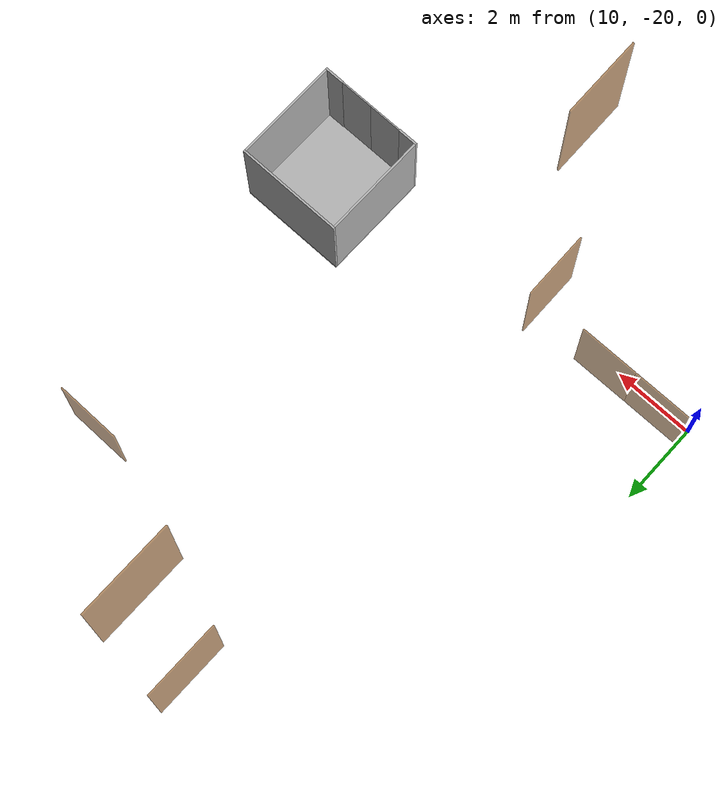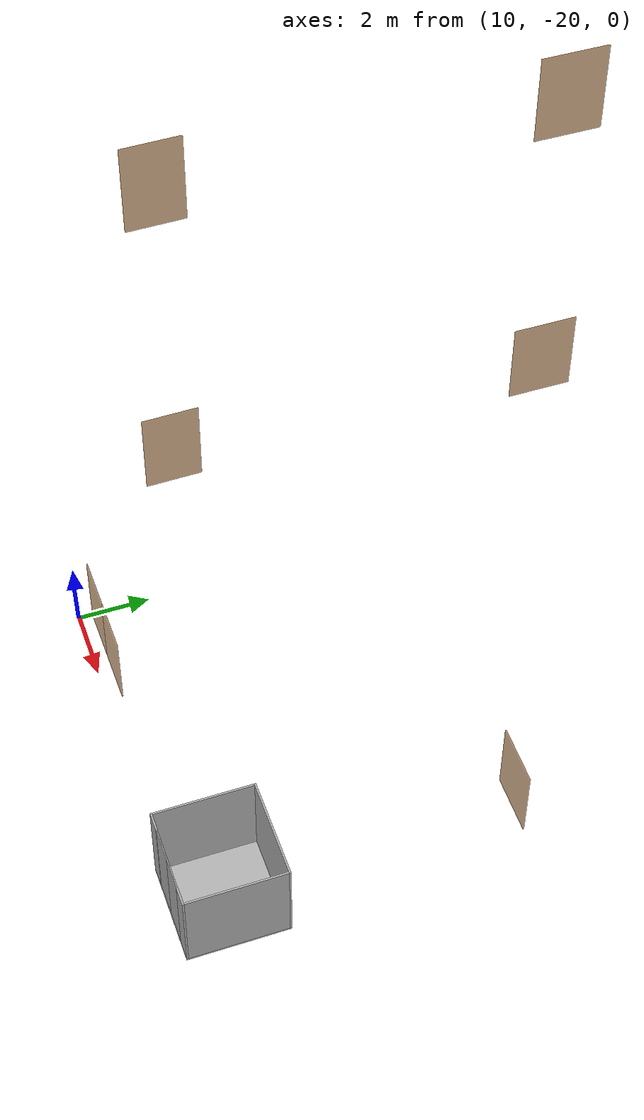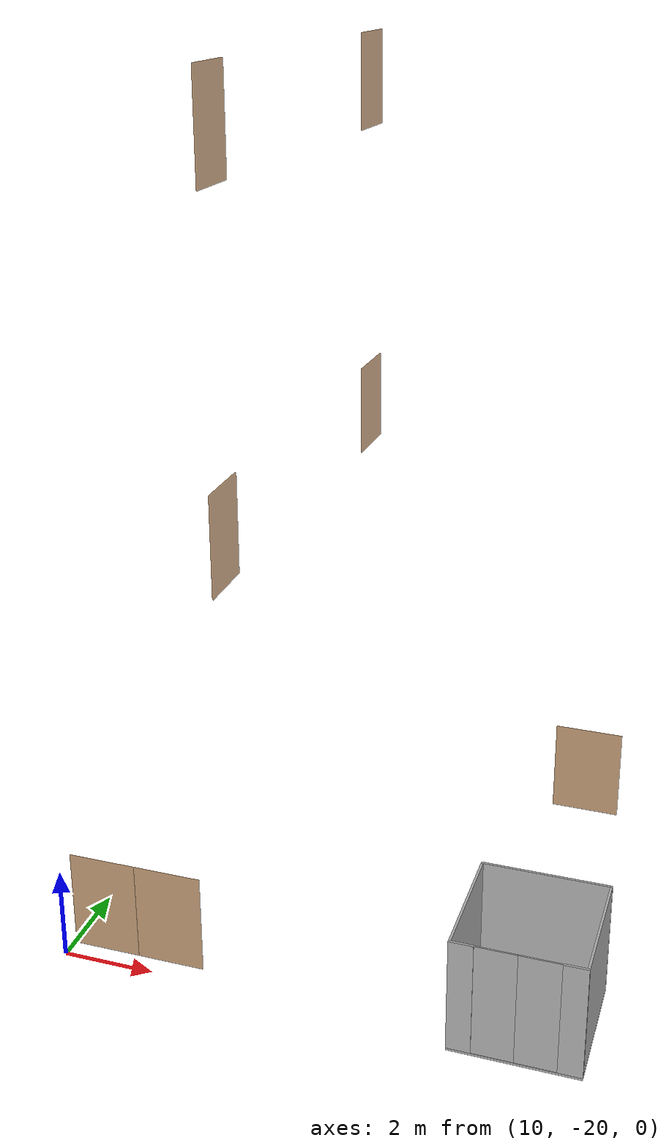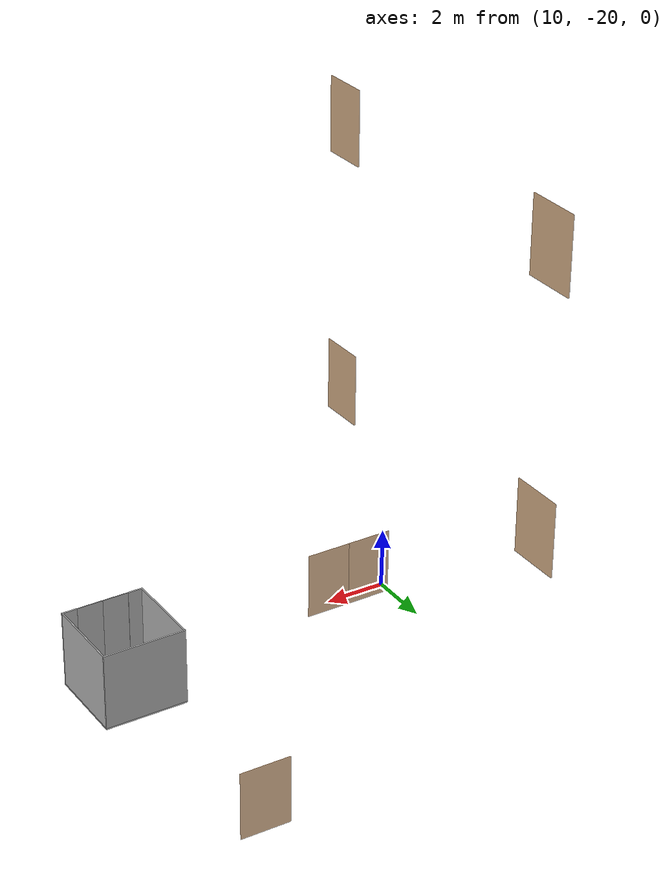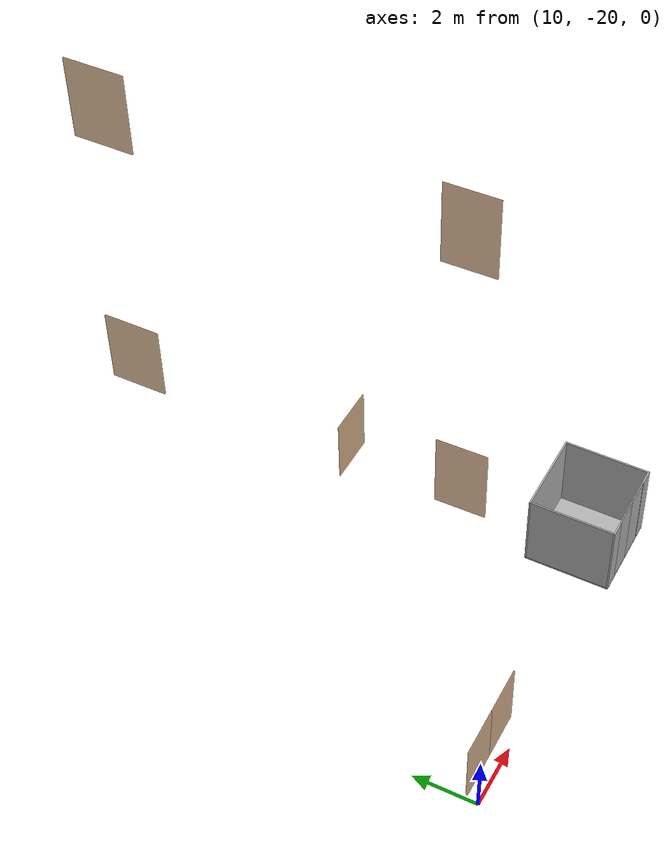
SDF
<sdf version="1.7">
 <world name="sim_world">
  <model name="L1_door2">
   <pose>11.515053553551752 -19.600764056030513 0.0 0 0 -3.1369488994516814</pose>
   <link name="right">
    <pose>0.7374085791900343 0 1.11 0 0 0</pose>
    <visual name="right_visual">
     <geometry><box><size>1.4648171583800687 0.03 2.2</size></box></geometry>
     <material>
      <ambient>0.5 0.25 0 0.6</ambient>
      <diffuse>0.5 0.25 0 0.6</diffuse>
      <pbr><metal><metalness>0.0</metalness></metal></pbr>
     </material>
    </visual>
    <collision name="right_collision">
     <geometry><box><size>1.4648171583800687 0.03 2.2</size></box></geometry>
     <surface><contact><collide_bitmask>0x02</collide_bitmask></contact></surface>
    </collision>
    <inertial>
     <mass>50.0</mass>
     <inertia><ixx>20.17041666666667</ixx><iyy>29.107038781186084</iyy><izz>8.944122114519415</izz></inertia>
    </inertial>
   </link>
   <joint name="right_joint" type="prismatic">
    <parent>world</parent>
    <child>right</child>
    <axis>
     <xyz>1 0 0</xyz>
     <limit><lower>0.0</lower><upper>1.4748171583800687</upper><effort>500.0</effort></limit>
    </axis>
   </joint>
   <link name="left">
    <pose>-0.7374085791900343 0 1.11 0 0 0</pose>
    <visual name="left_visual">
     <geometry><box><size>1.4648171583800687 0.03 2.2</size></box></geometry>
     <material>
      <ambient>0.5 0.25 0 0.6</ambient>
      <diffuse>0.5 0.25 0 0.6</diffuse>
      <pbr><metal><metalness>0.0</metalness></metal></pbr>
     </material>
    </visual>
    <collision name="left_collision">
     <geometry><box><size>1.4648171583800687 0.03 2.2</size></box></geometry>
     <surface><contact><collide_bitmask>0x02</collide_bitmask></contact></surface>
    </collision>
    <inertial>
     <mass>50.0</mass>
     <inertia><ixx>20.17041666666667</ixx><iyy>29.107038781186084</iyy><izz>8.944122114519415</izz></inertia>
    </inertial>
   </link>
   <joint name="left_joint" type="prismatic">
    <parent>world</parent>
    <child>left</child>
    <axis>
     <xyz>1 0 0</xyz>
     <limit><lower>-1.4748171583800687</lower><upper>0.0</upper><effort>500.0</effort></limit>
    </axis>
   </joint>
   <plugin name="register_component" filename="libregister_component.so">
    <component name="Door">
     <v_max_door>0.2</v_max_door>
     <a_max_door>0.2</a_max_door>
     <a_nom_door>0.08</a_nom_door>
     <dx_min_door>0.001</dx_min_door>
     <f_max_door>100.0</f_max_door>
     <ros_interface>true</ros_interface>
     <door name="L1_door2" type="DoubleSlidingDoor" left_joint_name="left_joint" right_joint_name="right_joint"/>
    </component>
   </plugin>
  </model>
  <model name="L1_door4">
   <pose>19.549120677562087 -11.10939551168469 0.0 0 0 -0.009497018345977264</pose>
   <link name="right">
    <pose>0 0 1.11 0 0 0</pose>
    <visual name="right_visual">
     <geometry><box><size>1.5905993122484277 0.03 2.2</size></box></geometry>
     <material>
      <ambient>0.5 0.25 0 0.6</ambient>
      <diffuse>0.5 0.25 0 0.6</diffuse>
      <pbr><metal><metalness>0.0</metalness></metal></pbr>
     </material>
    </visual>
    <collision name="right_collision">
     <geometry><box><size>1.5905993122484277 0.03 2.2</size></box></geometry>
     <surface><contact><collide_bitmask>0x02</collide_bitmask></contact></surface>
    </collision>
    <inertial>
     <mass>50.0</mass>
     <inertia><ixx>20.17041666666667</ixx><iyy>30.70835905052155</iyy><izz>10.545442383854882</izz></inertia>
    </inertial>
   </link>
   <joint name="right_joint" type="revolute">
    <parent>world</parent>
    <child>right</child>
    <axis><xyz>0 0 1</xyz><limit><lower>0</lower><upper>1.57</upper></limit></axis>
    <pose>0.8002996561242138 0 0 0 0 0</pose>
   </joint>
   <plugin name="register_component" filename="libregister_component.so">
    <component name="Door">
     <v_max_door>0.5</v_max_door>
     <a_max_door>0.3</a_max_door>
     <a_nom_door>0.15</a_nom_door>
     <dx_min_door>0.01</dx_min_door>
     <f_max_door>500.0</f_max_door>
     <ros_interface>true</ros_interface>
     <door name="L1_door4" type="SwingDoor" left_joint_name="empty_joint" right_joint_name="right_joint"/>
    </component>
   </plugin>
  </model>
  <model name="L2_door9">
   <pose>13.018848337594756 -17.76158217016259 8.0 0 0 1.5874688733681936</pose>
   <link name="right">
    <pose>0 0 1.11 0 0 0</pose>
    <visual name="right_visual">
     <geometry><box><size>1.382945881897145 0.03 2.2</size></box></geometry>
     <material>
      <ambient>0.5 0.25 0 0.6</ambient>
      <diffuse>0.5 0.25 0 0.6</diffuse>
      <pbr><metal><metalness>0.0</metalness></metal></pbr>
     </material>
    </visual>
    <collision name="right_collision">
     <geometry><box><size>1.382945881897145 0.03 2.2</size></box></geometry>
     <surface><contact><collide_bitmask>0x02</collide_bitmask></contact></surface>
    </collision>
    <inertial>
     <mass>50.0</mass>
     <inertia><ixx>20.17041666666667</ixx><iyy>28.13558046773447</iyy><izz>7.9726638010677995</izz></inertia>
    </inertial>
   </link>
   <joint name="right_joint" type="revolute">
    <parent>world</parent>
    <child>right</child>
    <axis><xyz>0 0 -1</xyz><limit><lower>0</lower><upper>1.57</upper></limit></axis>
    <pose>0.6964729409485725 0 0 0 0 0</pose>
   </joint>
   <plugin name="register_component" filename="libregister_component.so">
    <component name="Door">
     <v_max_door>0.5</v_max_door>
     <a_max_door>0.3</a_max_door>
     <a_nom_door>0.15</a_nom_door>
     <dx_min_door>0.01</dx_min_door>
     <f_max_door>500.0</f_max_door>
     <ros_interface>true</ros_interface>
     <door name="L2_door9" type="SwingDoor" left_joint_name="empty_joint" right_joint_name="right_joint"/>
    </component>
   </plugin>
  </model>
  <model name="L2_door11">
   <pose>13.070832545372092 -8.29507317951618 8.0 0 0 1.571612558028263</pose>
   <link name="right">
    <pose>0 0 1.11 0 0 0</pose>
    <visual name="right_visual">
     <geometry><box><size>1.5950330216253457 0.03 2.2</size></box></geometry>
     <material>
      <ambient>0.5 0.25 0 0.6</ambient>
      <diffuse>0.5 0.25 0 0.6</diffuse>
      <pbr><metal><metalness>0.0</metalness></metal></pbr>
     </material>
    </visual>
    <collision name="right_collision">
     <geometry><box><size>1.5950330216253457 0.03 2.2</size></box></geometry>
     <surface><contact><collide_bitmask>0x02</collide_bitmask></contact></surface>
    </collision>
    <inertial>
     <mass>50.0</mass>
     <inertia><ixx>20.17041666666667</ixx><iyy>30.767209750313672</iyy><izz>10.604293083647002</izz></inertia>
    </inertial>
   </link>
   <joint name="right_joint" type="revolute">
    <parent>world</parent>
    <child>right</child>
    <axis><xyz>0 0 -1</xyz><limit><lower>0</lower><upper>1.57</upper></limit></axis>
    <pose>0.8025165108126728 0 0 0 0 0</pose>
   </joint>
   <plugin name="register_component" filename="libregister_component.so">
    <component name="Door">
     <v_max_door>0.5</v_max_door>
     <a_max_door>0.3</a_max_door>
     <a_nom_door>0.15</a_nom_door>
     <dx_min_door>0.01</dx_min_door>
     <f_max_door>500.0</f_max_door>
     <ros_interface>true</ros_interface>
     <door name="L2_door11" type="SwingDoor" left_joint_name="empty_joint" right_joint_name="right_joint"/>
    </component>
   </plugin>
  </model>
  <model name="L3_door9">
   <pose>13.018848337594756 -17.76158217016259 16.0 0 0 1.5874688733681936</pose>
   <link name="right">
    <pose>0 0 1.11 0 0 0</pose>
    <visual name="right_visual">
     <geometry><box><size>1.382945881897145 0.03 2.2</size></box></geometry>
     <material>
      <ambient>0.5 0.25 0 0.6</ambient>
      <diffuse>0.5 0.25 0 0.6</diffuse>
      <pbr><metal><metalness>0.0</metalness></metal></pbr>
     </material>
    </visual>
    <collision name="right_collision">
     <geometry><box><size>1.382945881897145 0.03 2.2</size></box></geometry>
     <surface><contact><collide_bitmask>0x02</collide_bitmask></contact></surface>
    </collision>
    <inertial>
     <mass>50.0</mass>
     <inertia><ixx>20.17041666666667</ixx><iyy>28.13558046773447</iyy><izz>7.9726638010677995</izz></inertia>
    </inertial>
   </link>
   <joint name="right_joint" type="revolute">
    <parent>world</parent>
    <child>right</child>
    <axis><xyz>0 0 -1</xyz><limit><lower>0</lower><upper>1.57</upper></limit></axis>
    <pose>0.6964729409485725 0 0 0 0 0</pose>
   </joint>
   <plugin name="register_component" filename="libregister_component.so">
    <component name="Door">
     <v_max_door>0.5</v_max_door>
     <a_max_door>0.3</a_max_door>
     <a_nom_door>0.15</a_nom_door>
     <dx_min_door>0.01</dx_min_door>
     <f_max_door>500.0</f_max_door>
     <ros_interface>true</ros_interface>
     <door name="L3_door9" type="SwingDoor" left_joint_name="empty_joint" right_joint_name="right_joint"/>
    </component>
   </plugin>
  </model>
  <model name="L3_door11">
   <pose>13.070832545372092 -8.29507317951618 16.0 0 0 1.571612558028263</pose>
   <link name="right">
    <pose>0 0 1.11 0 0 0</pose>
    <visual name="right_visual">
     <geometry><box><size>1.5950330216253457 0.03 2.2</size></box></geometry>
     <material>
      <ambient>0.5 0.25 0 0.6</ambient>
      <diffuse>0.5 0.25 0 0.6</diffuse>
      <pbr><metal><metalness>0.0</metalness></metal></pbr>
     </material>
    </visual>
    <collision name="right_collision">
     <geometry><box><size>1.5950330216253457 0.03 2.2</size></box></geometry>
     <surface><contact><collide_bitmask>0x02</collide_bitmask></contact></surface>
    </collision>
    <inertial>
     <mass>50.0</mass>
     <inertia><ixx>20.17041666666667</ixx><iyy>30.767209750313672</iyy><izz>10.604293083647002</izz></inertia>
    </inertial>
   </link>
   <joint name="right_joint" type="revolute">
    <parent>world</parent>
    <child>right</child>
    <axis><xyz>0 0 -1</xyz><limit><lower>0</lower><upper>1.57</upper></limit></axis>
    <pose>0.8025165108126728 0 0 0 0 0</pose>
   </joint>
   <plugin name="register_component" filename="libregister_component.so">
    <component name="Door">
     <v_max_door>0.5</v_max_door>
     <a_max_door>0.3</a_max_door>
     <a_nom_door>0.15</a_nom_door>
     <dx_min_door>0.01</dx_min_door>
     <f_max_door>500.0</f_max_door>
     <ros_interface>true</ros_interface>
     <door name="L3_door11" type="SwingDoor" left_joint_name="empty_joint" right_joint_name="right_joint"/>
    </component>
   </plugin>
  </model>
  <model name="Lift1">
   <link name="platform">
    <inertial>
     <mass>1200</mass>
     <inertia><ixx>729.2500000000001</ixx><iyy>729.2500000000001</iyy><izz>1458.0000000000002</izz></inertia>
    </inertial>
    <visual name="floor_visual">
     <pose>0 0 -0.025 0 0 0</pose>
     <geometry><box><size>2.7 2.7 0.05</size></box></geometry>
     <material>
      <ambient>0.5 0.5 0.5 1</ambient>
      <diffuse>0.7 0.7 0.7 1</diffuse>
      <specular>0.6 0.6 0.6 1</specular>
      <emissive>0.1 0.1 0.1 1</emissive>
     </material>
    </visual>
    <collision name="floor_collision">
     <pose>0 0 -0.025 0 0 0</pose>
     <geometry><box><size>2.7 2.7 0.05</size></box></geometry>
     <surface><contact><collide_bitmask>0x01</collide_bitmask></contact></surface>
    </collision>
    <visual name="frontwall1_visual">
     <pose>0.0 1.3250000000000002 1.25 0 0 0</pose>
     <geometry><box><size>2.7 0.05 2.5</size></box></geometry>
     <material>
      <ambient>0.5 0.5 0.5 1</ambient>
      <diffuse>0.7 0.7 0.7 1</diffuse>
      <specular>0.6 0.6 0.6 1</specular>
      <emissive>0.1 0.1 0.1 1</emissive>
     </material>
    </visual>
    <collision name="frontwall1_collision">
     <pose>0.0 1.3250000000000002 1.25 0 0 0</pose>
     <geometry><box><size>2.7 0.05 2.5</size></box></geometry>
     <surface><contact><collide_bitmask>0x01</collide_bitmask></contact></surface>
    </collision>
    <visual name="backwall1_visual">
     <pose>-1.1 -1.3250000000000002 1.25 0 0 0</pose>
     <geometry><box><size>0.5000000000000001 0.05 2.5</size></box></geometry>
     <material>
      <ambient>0.5 0.5 0.5 1</ambient>
      <diffuse>0.7 0.7 0.7 1</diffuse>
      <specular>0.6 0.6 0.6 1</specular>
      <emissive>0.1 0.1 0.1 1</emissive>
     </material>
    </visual>
    <collision name="backwall1_collision">
     <pose>-1.1 -1.3250000000000002 1.25 0 0 0</pose>
     <geometry><box><size>0.5000000000000001 0.05 2.5</size></box></geometry>
     <surface><contact><collide_bitmask>0x01</collide_bitmask></contact></surface>
    </collision>
    <visual name="backwall2_visual">
     <pose>1.1 -1.3250000000000002 1.25 0 0 0</pose>
     <geometry><box><size>0.5000000000000001 0.05 2.5</size></box></geometry>
     <material>
      <ambient>0.5 0.5 0.5 1</ambient>
      <diffuse>0.7 0.7 0.7 1</diffuse>
      <specular>0.6 0.6 0.6 1</specular>
      <emissive>0.1 0.1 0.1 1</emissive>
     </material>
    </visual>
    <collision name="backwall2_collision">
     <pose>1.1 -1.3250000000000002 1.25 0 0 0</pose>
     <geometry><box><size>0.5000000000000001 0.05 2.5</size></box></geometry>
     <surface><contact><collide_bitmask>0x01</collide_bitmask></contact></surface>
    </collision>
    <visual name="leftwall1_visual">
     <pose>-1.3250000000000002 0.0 1.25 0 0 1.5707963267948966</pose>
     <geometry><box><size>2.6 0.05 2.5</size></box></geometry>
     <material>
      <ambient>0.5 0.5 0.5 1</ambient>
      <diffuse>0.7 0.7 0.7 1</diffuse>
      <specular>0.6 0.6 0.6 1</specular>
      <emissive>0.1 0.1 0.1 1</emissive>
     </material>
    </visual>
    <collision name="leftwall1_collision">
     <pose>-1.3250000000000002 0.0 1.25 0 0 1.5707963267948966</pose>
     <geometry><box><size>2.6 0.05 2.5</size></box></geometry>
     <surface><contact><collide_bitmask>0x01</collide_bitmask></contact></surface>
    </collision>
    <visual name="rightwall1_visual">
     <pose>1.3250000000000002 0.0 1.25 0 0 1.5707963267948966</pose>
     <geometry><box><size>2.6 0.05 2.5</size></box></geometry>
     <material>
      <ambient>0.5 0.5 0.5 1</ambient>
      <diffuse>0.7 0.7 0.7 1</diffuse>
      <specular>0.6 0.6 0.6 1</specular>
      <emissive>0.1 0.1 0.1 1</emissive>
     </material>
    </visual>
    <collision name="rightwall1_collision">
     <pose>1.3250000000000002 0.0 1.25 0 0 1.5707963267948966</pose>
     <geometry><box><size>2.6 0.05 2.5</size></box></geometry>
     <surface><contact><collide_bitmask>0x01</collide_bitmask></contact></surface>
    </collision>
   </link>
   <joint name="cabin_joint" type="prismatic">
    <parent>world</parent>
    <child>platform</child>
    <axis><xyz>0 0 1</xyz></axis>
   </joint>
   <model name="CabinDoor_Lift1_lift1_door">
    <pose>0.0 -1.3250000000000002 0 0 0 0.0</pose>
    <link name="right_door">
     <pose>0.425 0 1.25 0 0 0</pose>
     <visual name="right_door_visual">
      <geometry><box><size>0.85 0.03 2.5</size></box></geometry>
      <material>
       <ambient>0.5 0.5 0.5 1</ambient>
       <diffuse>0.7 0.7 0.7 1</diffuse>
       <specular>0.6 0.6 0.6 1</specular>
       <emissive>0.1 0.1 0.1 1</emissive>
      </material>
     </visual>
     <collision name="right_door_collision">
      <geometry><box><size>0.85 0.03 2.5</size></box></geometry>
      <surface><contact><collide_bitmask>0x02</collide_bitmask></contact></surface>
     </collision>
    </link>
    <link name="left_door">
     <pose>-0.425 0 1.25 0 0 0</pose>
     <visual name="left_door_visual">
      <geometry><box><size>0.85 0.03 2.5</size></box></geometry>
      <material>
       <ambient>0.5 0.5 0.5 1</ambient>
       <diffuse>0.7 0.7 0.7 1</diffuse>
       <specular>0.6 0.6 0.6 1</specular>
       <emissive>0.1 0.1 0.1 1</emissive>
      </material>
     </visual>
     <collision name="left_door_collision">
      <geometry><box><size>0.85 0.03 2.5</size></box></geometry>
      <surface><contact><collide_bitmask>0x02</collide_bitmask></contact></surface>
     </collision>
    </link>
    <plugin name="register_component" filename="libregister_component.so">
     <component name="Door">
      <v_max_door>0.3</v_max_door>
      <a_max_door>0.2</a_max_door>
      <a_nom_door>0.1</a_nom_door>
      <dx_min_door>0.0001</dx_min_door>
      <f_max_door>35.0</f_max_door>
      <door left_joint_name="CabinDoor_Lift1_lift1_door_left_joint" name="CabinDoor_Lift1_lift1_door" right_joint_name="CabinDoor_Lift1_lift1_door_right_joint" type="DoubleSlidingDoor"/>
     </component>
    </plugin>
   </model>
   <joint name="CabinDoor_Lift1_lift1_door_right_joint" type="prismatic">
    <parent>platform</parent>
    <child>CabinDoor_Lift1_lift1_door::right_door</child>
    <axis><xyz>1 0 0</xyz><limit><lower>0</lower><upper>0.85</upper></limit></axis>
   </joint>
   <joint name="CabinDoor_Lift1_lift1_door_left_joint" type="prismatic">
    <parent>platform</parent>
    <child>CabinDoor_Lift1_lift1_door::left_door</child>
    <axis><xyz>1 0 0</xyz><limit><lower>-0.85</lower><upper>0</upper></limit></axis>
   </joint>
   <plugin name="register_component" filename="libregister_component.so">
    <component name="Lift">
     <lift_name>Lift1</lift_name>
     <floor name="L1" elevation="0.0">
      <door_pair cabin_door="CabinDoor_Lift1_lift1_door" shaft_door="ShaftDoor_Lift1_L1_lift1_door"/>
     </floor>
     <floor name="L2" elevation="8.0">
      <door_pair cabin_door="CabinDoor_Lift1_lift1_door" shaft_door="ShaftDoor_Lift1_L2_lift1_door"/>
     </floor>
     <floor name="L3" elevation="16.0">
      <door_pair cabin_door="CabinDoor_Lift1_lift1_door" shaft_door="ShaftDoor_Lift1_L3_lift1_door"/>
     </floor>
     <initial_floor>L1</initial_floor>
     <v_max_cabin>2.0</v_max_cabin>
     <a_max_cabin>1.2</a_max_cabin>
     <a_nom_cabin>1.0</a_nom_cabin>
     <dx_min_cabin>0.001</dx_min_cabin>
     <f_max_cabin>25323.0</f_max_cabin>
     <cabin_joint_name>cabin_joint</cabin_joint_name>
    </component>
   </plugin>
   <pose>19.766468308668816 -18.931265422387035 0 0 0 0.0</pose>
  </model>
 </world>
</sdf>
